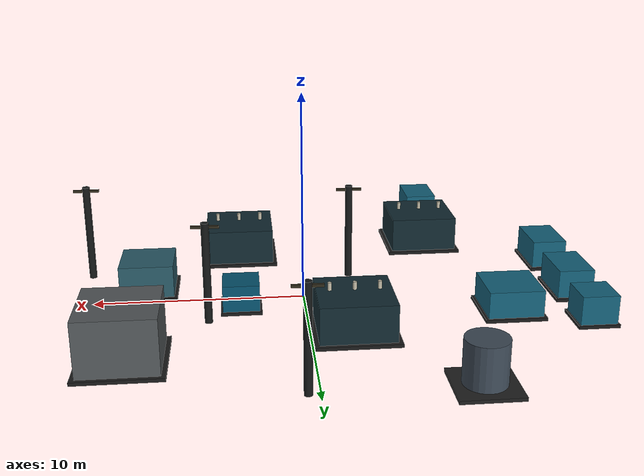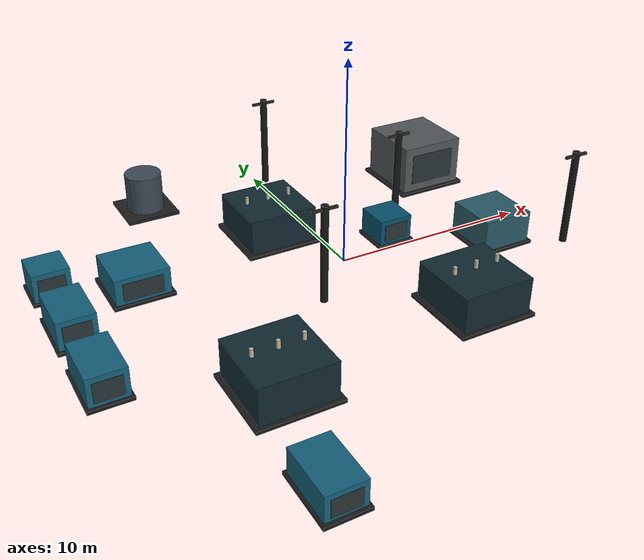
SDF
<sdf version="1.9">
 <world name="substation_complex">
  <model name="entry_switchgear">
   <static>true</static>
   <pose>-8 -12.5 0 0 0 0</pose>
   <link name="link">
    <collision name="collision">
     <pose>0 0 0.7 0 0 0</pose>
     <geometry><box><size>1.84 2.76 1.4</size></box></geometry>
    </collision>
    <visual name="base">
     <pose>0 0 0.08 0 0 0</pose>
     <geometry><box><size>1.92 2.88 0.16</size></box></geometry>
     <material>
      <ambient>0.10 0.10 0.10 1</ambient>
      <diffuse>0.10 0.10 0.10 1</diffuse>
      <specular>0.08 0.08 0.08 1</specular>
     </material>
     <plugin filename="gz-sim-label-system" name="gz::sim::systems::Label"><label>127</label></plugin>
    </visual>
    <visual name="body">
     <pose>0 0 0.7 0 0 0</pose>
     <geometry><box><size>1.72 2.58 1.26</size></box></geometry>
     <material>
      <ambient>0.08 0.38 0.48 1</ambient>
      <diffuse>0.08 0.38 0.48 1</diffuse>
      <specular>0.08 0.08 0.08 1</specular>
     </material>
     <plugin filename="gz-sim-label-system" name="gz::sim::systems::Label"><label>127</label></plugin>
    </visual>
    <visual name="front_panel">
     <pose>0 -1.305 0.7 0 0 0</pose>
     <geometry><box><size>1.24 0.025 0.812</size></box></geometry>
     <material>
      <ambient>0.16 0.20 0.21 1</ambient>
      <diffuse>0.16 0.20 0.21 1</diffuse>
      <specular>0.08 0.08 0.08 1</specular>
     </material>
     <plugin filename="gz-sim-label-system" name="gz::sim::systems::Label"><label>127</label></plugin>
    </visual>
   </link>
  </model>
  <model name="west_switchgear_02">
   <static>true</static>
   <pose>-13 -3.5 0 0 0 0</pose>
   <link name="link">
    <collision name="collision">
     <pose>0 0 0.8 0 0 0</pose>
     <geometry><box><size>1.84 2.76 1.6</size></box></geometry>
    </collision>
    <visual name="base">
     <pose>0 0 0.08 0 0 0</pose>
     <geometry><box><size>1.92 2.88 0.16</size></box></geometry>
     <material>
      <ambient>0.10 0.10 0.10 1</ambient>
      <diffuse>0.10 0.10 0.10 1</diffuse>
      <specular>0.08 0.08 0.08 1</specular>
     </material>
     <plugin filename="gz-sim-label-system" name="gz::sim::systems::Label"><label>128</label></plugin>
    </visual>
    <visual name="body">
     <pose>0 0 0.8 0 0 0</pose>
     <geometry><box><size>1.72 2.58 1.44</size></box></geometry>
     <material>
      <ambient>0.08 0.38 0.48 1</ambient>
      <diffuse>0.08 0.38 0.48 1</diffuse>
      <specular>0.08 0.08 0.08 1</specular>
     </material>
     <plugin filename="gz-sim-label-system" name="gz::sim::systems::Label"><label>128</label></plugin>
    </visual>
    <visual name="front_panel">
     <pose>0 -1.305 0.8 0 0 0</pose>
     <geometry><box><size>1.24 0.025 0.928</size></box></geometry>
     <material>
      <ambient>0.16 0.20 0.21 1</ambient>
      <diffuse>0.16 0.20 0.21 1</diffuse>
      <specular>0.08 0.08 0.08 1</specular>
     </material>
     <plugin filename="gz-sim-label-system" name="gz::sim::systems::Label"><label>128</label></plugin>
    </visual>
   </link>
  </model>
  <model name="west_switchgear_03">
   <static>true</static>
   <pose>-13 0.5 0 0 0 0</pose>
   <link name="link">
    <collision name="collision">
     <pose>0 0 0.8 0 0 0</pose>
     <geometry><box><size>1.84 2.76 1.6</size></box></geometry>
    </collision>
    <visual name="base">
     <pose>0 0 0.08 0 0 0</pose>
     <geometry><box><size>1.92 2.88 0.16</size></box></geometry>
     <material>
      <ambient>0.10 0.10 0.10 1</ambient>
      <diffuse>0.10 0.10 0.10 1</diffuse>
      <specular>0.08 0.08 0.08 1</specular>
     </material>
     <plugin filename="gz-sim-label-system" name="gz::sim::systems::Label"><label>139</label></plugin>
    </visual>
    <visual name="body">
     <pose>0 0 0.8 0 0 0</pose>
     <geometry><box><size>1.72 2.58 1.44</size></box></geometry>
     <material>
      <ambient>0.08 0.38 0.48 1</ambient>
      <diffuse>0.08 0.38 0.48 1</diffuse>
      <specular>0.08 0.08 0.08 1</specular>
     </material>
     <plugin filename="gz-sim-label-system" name="gz::sim::systems::Label"><label>139</label></plugin>
    </visual>
    <visual name="front_panel">
     <pose>0 -1.305 0.8 0 0 0</pose>
     <geometry><box><size>1.24 0.025 0.928</size></box></geometry>
     <material>
      <ambient>0.16 0.20 0.21 1</ambient>
      <diffuse>0.16 0.20 0.21 1</diffuse>
      <specular>0.08 0.08 0.08 1</specular>
     </material>
     <plugin filename="gz-sim-label-system" name="gz::sim::systems::Label"><label>139</label></plugin>
    </visual>
   </link>
  </model>
  <model name="west_switchgear_04">
   <static>true</static>
   <pose>-13 4 0 0 0 0</pose>
   <link name="link">
    <collision name="collision">
     <pose>0 0 0.8 0 0 0</pose>
     <geometry><box><size>1.84 1.84 1.6</size></box></geometry>
    </collision>
    <visual name="base">
     <pose>0 0 0.08 0 0 0</pose>
     <geometry><box><size>1.92 1.92 0.16</size></box></geometry>
     <material>
      <ambient>0.10 0.10 0.10 1</ambient>
      <diffuse>0.10 0.10 0.10 1</diffuse>
      <specular>0.08 0.08 0.08 1</specular>
     </material>
     <plugin filename="gz-sim-label-system" name="gz::sim::systems::Label"><label>149</label></plugin>
    </visual>
    <visual name="body">
     <pose>0 0 0.8 0 0 0</pose>
     <geometry><box><size>1.72 1.72 1.44</size></box></geometry>
     <material>
      <ambient>0.08 0.38 0.48 1</ambient>
      <diffuse>0.08 0.38 0.48 1</diffuse>
      <specular>0.08 0.08 0.08 1</specular>
     </material>
     <plugin filename="gz-sim-label-system" name="gz::sim::systems::Label"><label>149</label></plugin>
    </visual>
    <visual name="front_panel">
     <pose>0 -0.87 0.8 0 0 0</pose>
     <geometry><box><size>1.24 0.025 0.928</size></box></geometry>
     <material>
      <ambient>0.16 0.20 0.21 1</ambient>
      <diffuse>0.16 0.20 0.21 1</diffuse>
      <specular>0.08 0.08 0.08 1</specular>
     </material>
     <plugin filename="gz-sim-label-system" name="gz::sim::systems::Label"><label>149</label></plugin>
    </visual>
   </link>
  </model>
  <model name="transformer_sw">
   <static>true</static>
   <pose>-7 -7 0 0 0 0</pose>
   <link name="link">
    <collision name="collision">
     <pose>0 0 1 0 0 0</pose>
     <geometry><box><size>3.68 3.68 2</size></box></geometry>
    </collision>
    <visual name="base">
     <pose>0 0 0.08 0 0 0</pose>
     <geometry><box><size>3.84 3.84 0.16</size></box></geometry>
     <material>
      <ambient>0.10 0.10 0.10 1</ambient>
      <diffuse>0.10 0.10 0.10 1</diffuse>
      <specular>0.08 0.08 0.08 1</specular>
     </material>
     <plugin filename="gz-sim-label-system" name="gz::sim::systems::Label"><label>76</label></plugin>
    </visual>
    <visual name="body">
     <pose>0 0 1 0 0 0</pose>
     <geometry><box><size>3.44 3.44 1.8</size></box></geometry>
     <material>
      <ambient>0.07 0.16 0.19 1</ambient>
      <diffuse>0.07 0.16 0.19 1</diffuse>
      <specular>0.08 0.08 0.08 1</specular>
     </material>
     <plugin filename="gz-sim-label-system" name="gz::sim::systems::Label"><label>76</label></plugin>
    </visual>
    <visual name="bushing_1">
     <pose>-1.12 0 2.18 0 0 0</pose>
     <geometry><cylinder><radius>0.09</radius><length>0.36</length></cylinder></geometry>
     <material>
      <ambient>0.75 0.72 0.64 1</ambient>
      <diffuse>0.75 0.72 0.64 1</diffuse>
      <specular>0.08 0.08 0.08 1</specular>
     </material>
     <plugin filename="gz-sim-label-system" name="gz::sim::systems::Label"><label>76</label></plugin>
    </visual>
    <visual name="bushing_2">
     <pose>0 0 2.18 0 0 0</pose>
     <geometry><cylinder><radius>0.09</radius><length>0.36</length></cylinder></geometry>
     <material>
      <ambient>0.75 0.72 0.64 1</ambient>
      <diffuse>0.75 0.72 0.64 1</diffuse>
      <specular>0.08 0.08 0.08 1</specular>
     </material>
     <plugin filename="gz-sim-label-system" name="gz::sim::systems::Label"><label>76</label></plugin>
    </visual>
    <visual name="bushing_3">
     <pose>1.12 0 2.18 0 0 0</pose>
     <geometry><cylinder><radius>0.09</radius><length>0.36</length></cylinder></geometry>
     <material>
      <ambient>0.75 0.72 0.64 1</ambient>
      <diffuse>0.75 0.72 0.64 1</diffuse>
      <specular>0.08 0.08 0.08 1</specular>
     </material>
     <plugin filename="gz-sim-label-system" name="gz::sim::systems::Label"><label>76</label></plugin>
    </visual>
   </link>
  </model>
  <model name="transformer_se">
   <static>true</static>
   <pose>3 -6 0 0 0 0</pose>
   <link name="link">
    <collision name="collision">
     <pose>0 0 1 0 0 0</pose>
     <geometry><box><size>3.68 3.68 2</size></box></geometry>
    </collision>
    <visual name="base">
     <pose>0 0 0.08 0 0 0</pose>
     <geometry><box><size>3.84 3.84 0.16</size></box></geometry>
     <material>
      <ambient>0.10 0.10 0.10 1</ambient>
      <diffuse>0.10 0.10 0.10 1</diffuse>
      <specular>0.08 0.08 0.08 1</specular>
     </material>
     <plugin filename="gz-sim-label-system" name="gz::sim::systems::Label"><label>57</label></plugin>
    </visual>
    <visual name="body">
     <pose>0 0 1 0 0 0</pose>
     <geometry><box><size>3.44 3.44 1.8</size></box></geometry>
     <material>
      <ambient>0.07 0.16 0.19 1</ambient>
      <diffuse>0.07 0.16 0.19 1</diffuse>
      <specular>0.08 0.08 0.08 1</specular>
     </material>
     <plugin filename="gz-sim-label-system" name="gz::sim::systems::Label"><label>57</label></plugin>
    </visual>
    <visual name="bushing_1">
     <pose>-1.12 0 2.18 0 0 0</pose>
     <geometry><cylinder><radius>0.09</radius><length>0.36</length></cylinder></geometry>
     <material>
      <ambient>0.75 0.72 0.64 1</ambient>
      <diffuse>0.75 0.72 0.64 1</diffuse>
      <specular>0.08 0.08 0.08 1</specular>
     </material>
     <plugin filename="gz-sim-label-system" name="gz::sim::systems::Label"><label>57</label></plugin>
    </visual>
    <visual name="bushing_2">
     <pose>0 0 2.18 0 0 0</pose>
     <geometry><cylinder><radius>0.09</radius><length>0.36</length></cylinder></geometry>
     <material>
      <ambient>0.75 0.72 0.64 1</ambient>
      <diffuse>0.75 0.72 0.64 1</diffuse>
      <specular>0.08 0.08 0.08 1</specular>
     </material>
     <plugin filename="gz-sim-label-system" name="gz::sim::systems::Label"><label>57</label></plugin>
    </visual>
    <visual name="bushing_3">
     <pose>1.12 0 2.18 0 0 0</pose>
     <geometry><cylinder><radius>0.09</radius><length>0.36</length></cylinder></geometry>
     <material>
      <ambient>0.75 0.72 0.64 1</ambient>
      <diffuse>0.75 0.72 0.64 1</diffuse>
      <specular>0.08 0.08 0.08 1</specular>
     </material>
     <plugin filename="gz-sim-label-system" name="gz::sim::systems::Label"><label>57</label></plugin>
    </visual>
   </link>
  </model>
  <model name="transformer_mid">
   <static>true</static>
   <pose>-2 4 0 0 0 0</pose>
   <link name="link">
    <collision name="collision">
     <pose>0 0 1 0 0 0</pose>
     <geometry><box><size>3.68 3.68 2</size></box></geometry>
    </collision>
    <visual name="base">
     <pose>0 0 0.08 0 0 0</pose>
     <geometry><box><size>3.84 3.84 0.16</size></box></geometry>
     <material>
      <ambient>0.10 0.10 0.10 1</ambient>
      <diffuse>0.10 0.10 0.10 1</diffuse>
      <specular>0.08 0.08 0.08 1</specular>
     </material>
     <plugin filename="gz-sim-label-system" name="gz::sim::systems::Label"><label>64</label></plugin>
    </visual>
    <visual name="body">
     <pose>0 0 1 0 0 0</pose>
     <geometry><box><size>3.44 3.44 1.8</size></box></geometry>
     <material>
      <ambient>0.07 0.16 0.19 1</ambient>
      <diffuse>0.07 0.16 0.19 1</diffuse>
      <specular>0.08 0.08 0.08 1</specular>
     </material>
     <plugin filename="gz-sim-label-system" name="gz::sim::systems::Label"><label>64</label></plugin>
    </visual>
    <visual name="bushing_1">
     <pose>-1.12 0 2.18 0 0 0</pose>
     <geometry><cylinder><radius>0.09</radius><length>0.36</length></cylinder></geometry>
     <material>
      <ambient>0.75 0.72 0.64 1</ambient>
      <diffuse>0.75 0.72 0.64 1</diffuse>
      <specular>0.08 0.08 0.08 1</specular>
     </material>
     <plugin filename="gz-sim-label-system" name="gz::sim::systems::Label"><label>64</label></plugin>
    </visual>
    <visual name="bushing_2">
     <pose>0 0 2.18 0 0 0</pose>
     <geometry><cylinder><radius>0.09</radius><length>0.36</length></cylinder></geometry>
     <material>
      <ambient>0.75 0.72 0.64 1</ambient>
      <diffuse>0.75 0.72 0.64 1</diffuse>
      <specular>0.08 0.08 0.08 1</specular>
     </material>
     <plugin filename="gz-sim-label-system" name="gz::sim::systems::Label"><label>64</label></plugin>
    </visual>
    <visual name="bushing_3">
     <pose>1.12 0 2.18 0 0 0</pose>
     <geometry><cylinder><radius>0.09</radius><length>0.36</length></cylinder></geometry>
     <material>
      <ambient>0.75 0.72 0.64 1</ambient>
      <diffuse>0.75 0.72 0.64 1</diffuse>
      <specular>0.08 0.08 0.08 1</specular>
     </material>
     <plugin filename="gz-sim-label-system" name="gz::sim::systems::Label"><label>64</label></plugin>
    </visual>
   </link>
  </model>
  <model name="control_building">
   <static>true</static>
   <pose>8 6 0 0 0 0</pose>
   <link name="link">
    <collision name="collision">
     <pose>0 0 1.4 0 0 0</pose>
     <geometry><box><size>3.68 3.68 2.8</size></box></geometry>
    </collision>
    <visual name="base">
     <pose>0 0 0.08 0 0 0</pose>
     <geometry><box><size>3.84 3.84 0.16</size></box></geometry>
     <material>
      <ambient>0.10 0.10 0.10 1</ambient>
      <diffuse>0.10 0.10 0.10 1</diffuse>
      <specular>0.08 0.08 0.08 1</specular>
     </material>
    </visual>
    <visual name="body">
     <pose>0 0 1.4 0 0 0</pose>
     <geometry><box><size>3.44 3.44 2.52</size></box></geometry>
     <material>
      <ambient>0.32 0.34 0.35 1</ambient>
      <diffuse>0.32 0.34 0.35 1</diffuse>
      <specular>0.08 0.08 0.08 1</specular>
     </material>
    </visual>
    <visual name="front_panel">
     <pose>0 -1.74 1.4 0 0 0</pose>
     <geometry><box><size>2.48 0.025 1.624</size></box></geometry>
     <material>
      <ambient>0.16 0.20 0.21 1</ambient>
      <diffuse>0.16 0.20 0.21 1</diffuse>
      <specular>0.08 0.08 0.08 1</specular>
     </material>
    </visual>
   </link>
  </model>
  <model name="switchgear_west">
   <static>true</static>
   <pose>-9.5 2.5 0 0 0 0</pose>
   <link name="link">
    <collision name="collision">
     <pose>0 0 0.75 0 0 0</pose>
     <geometry><box><size>2.76 2.76 1.5</size></box></geometry>
    </collision>
    <visual name="base">
     <pose>0 0 0.08 0 0 0</pose>
     <geometry><box><size>2.88 2.88 0.16</size></box></geometry>
     <material>
      <ambient>0.10 0.10 0.10 1</ambient>
      <diffuse>0.10 0.10 0.10 1</diffuse>
      <specular>0.08 0.08 0.08 1</specular>
     </material>
     <plugin filename="gz-sim-label-system" name="gz::sim::systems::Label"><label>113</label></plugin>
    </visual>
    <visual name="body">
     <pose>0 0 0.75 0 0 0</pose>
     <geometry><box><size>2.58 2.58 1.35</size></box></geometry>
     <material>
      <ambient>0.08 0.38 0.48 1</ambient>
      <diffuse>0.08 0.38 0.48 1</diffuse>
      <specular>0.08 0.08 0.08 1</specular>
     </material>
     <plugin filename="gz-sim-label-system" name="gz::sim::systems::Label"><label>113</label></plugin>
    </visual>
    <visual name="front_panel">
     <pose>0 -1.305 0.75 0 0 0</pose>
     <geometry><box><size>1.86 0.025 0.87</size></box></geometry>
     <material>
      <ambient>0.16 0.20 0.21 1</ambient>
      <diffuse>0.16 0.20 0.21 1</diffuse>
      <specular>0.08 0.08 0.08 1</specular>
     </material>
     <plugin filename="gz-sim-label-system" name="gz::sim::systems::Label"><label>113</label></plugin>
    </visual>
   </link>
  </model>
  <model name="capacitor_east">
   <static>true</static>
   <pose>7.5 -1.5 0 0 0 0</pose>
   <link name="link">
    <collision name="collision">
     <pose>0 0 0.9 0 0 0</pose>
     <geometry><box><size>2.76 2.76 1.8</size></box></geometry>
    </collision>
    <visual name="base">
     <pose>0 0 0.08 0 0 0</pose>
     <geometry><box><size>2.88 2.88 0.16</size></box></geometry>
     <material>
      <ambient>0.10 0.10 0.10 1</ambient>
      <diffuse>0.10 0.10 0.10 1</diffuse>
      <specular>0.08 0.08 0.08 1</specular>
     </material>
     <plugin filename="gz-sim-label-system" name="gz::sim::systems::Label"><label>178</label></plugin>
    </visual>
    <visual name="body">
     <pose>0 0 0.9 0 0 0</pose>
     <geometry><box><size>2.58 2.58 1.62</size></box></geometry>
     <material>
      <ambient>0.16 0.35 0.40 1</ambient>
      <diffuse>0.16 0.35 0.40 1</diffuse>
      <specular>0.08 0.08 0.08 1</specular>
     </material>
     <plugin filename="gz-sim-label-system" name="gz::sim::systems::Label"><label>178</label></plugin>
    </visual>
    <visual name="capacitor_-0.22_-0.25">
     <pose>-0.75 -0.66 0.98 0 0 0</pose>
     <geometry><cylinder><radius>0.1</radius><length>1.17</length></cylinder></geometry>
     <material>
      <ambient>0.72 0.74 0.70 1</ambient>
      <diffuse>0.72 0.74 0.70 1</diffuse>
      <specular>0.08 0.08 0.08 1</specular>
     </material>
     <plugin filename="gz-sim-label-system" name="gz::sim::systems::Label"><label>178</label></plugin>
    </visual>
    <visual name="capacitor_-0.22_0.0">
     <pose>0 -0.66 0.98 0 0 0</pose>
     <geometry><cylinder><radius>0.1</radius><length>1.17</length></cylinder></geometry>
     <material>
      <ambient>0.72 0.74 0.70 1</ambient>
      <diffuse>0.72 0.74 0.70 1</diffuse>
      <specular>0.08 0.08 0.08 1</specular>
     </material>
     <plugin filename="gz-sim-label-system" name="gz::sim::systems::Label"><label>178</label></plugin>
    </visual>
    <visual name="capacitor_-0.22_0.25">
     <pose>0.75 -0.66 0.98 0 0 0</pose>
     <geometry><cylinder><radius>0.1</radius><length>1.17</length></cylinder></geometry>
     <material>
      <ambient>0.72 0.74 0.70 1</ambient>
      <diffuse>0.72 0.74 0.70 1</diffuse>
      <specular>0.08 0.08 0.08 1</specular>
     </material>
     <plugin filename="gz-sim-label-system" name="gz::sim::systems::Label"><label>178</label></plugin>
    </visual>
    <visual name="capacitor_0.22_-0.25">
     <pose>-0.75 0.66 0.98 0 0 0</pose>
     <geometry><cylinder><radius>0.1</radius><length>1.17</length></cylinder></geometry>
     <material>
      <ambient>0.72 0.74 0.70 1</ambient>
      <diffuse>0.72 0.74 0.70 1</diffuse>
      <specular>0.08 0.08 0.08 1</specular>
     </material>
     <plugin filename="gz-sim-label-system" name="gz::sim::systems::Label"><label>178</label></plugin>
    </visual>
    <visual name="capacitor_0.22_0.0">
     <pose>0 0.66 0.98 0 0 0</pose>
     <geometry><cylinder><radius>0.1</radius><length>1.17</length></cylinder></geometry>
     <material>
      <ambient>0.72 0.74 0.70 1</ambient>
      <diffuse>0.72 0.74 0.70 1</diffuse>
      <specular>0.08 0.08 0.08 1</specular>
     </material>
     <plugin filename="gz-sim-label-system" name="gz::sim::systems::Label"><label>178</label></plugin>
    </visual>
    <visual name="capacitor_0.22_0.25">
     <pose>0.75 0.66 0.98 0 0 0</pose>
     <geometry><cylinder><radius>0.1</radius><length>1.17</length></cylinder></geometry>
     <material>
      <ambient>0.72 0.74 0.70 1</ambient>
      <diffuse>0.72 0.74 0.70 1</diffuse>
      <specular>0.08 0.08 0.08 1</specular>
     </material>
     <plugin filename="gz-sim-label-system" name="gz::sim::systems::Label"><label>178</label></plugin>
    </visual>
   </link>
  </model>
  <model name="reactor_north">
   <static>true</static>
   <pose>-6.5 9.5 0 0 0 0</pose>
   <link name="link">
    <collision name="collision">
     <pose>0 0 1.1 0 0 0</pose>
     <geometry><cylinder><radius>1.02</radius><length>2.2</length></cylinder></geometry>
    </collision>
    <visual name="reactor">
     <pose>0 0 1.1 0 0 0</pose>
     <geometry><cylinder><radius>0.9384</radius><length>2.024</length></cylinder></geometry>
     <material>
      <ambient>0.24 0.29 0.34 1</ambient>
      <diffuse>0.24 0.29 0.34 1</diffuse>
      <specular>0.08 0.08 0.08 1</specular>
     </material>
     <plugin filename="gz-sim-label-system" name="gz::sim::systems::Label"><label>208</label></plugin>
    </visual>
    <visual name="base">
     <pose>0 0 0.08 0 0 0</pose>
     <geometry><box><size>2.7 2.7 0.16</size></box></geometry>
     <material>
      <ambient>0.12 0.12 0.12 1</ambient>
      <diffuse>0.12 0.12 0.12 1</diffuse>
      <specular>0.08 0.08 0.08 1</specular>
     </material>
     <plugin filename="gz-sim-label-system" name="gz::sim::systems::Label"><label>208</label></plugin>
    </visual>
   </link>
  </model>
  <model name="cabinet_center">
   <static>true</static>
   <pose>3 1 0 0 0 0</pose>
   <link name="link">
    <collision name="collision">
     <pose>0 0 0.75 0 0 0</pose>
     <geometry><box><size>1.84 1.84 1.5</size></box></geometry>
    </collision>
    <visual name="base">
     <pose>0 0 0.08 0 0 0</pose>
     <geometry><box><size>1.92 1.92 0.16</size></box></geometry>
     <material>
      <ambient>0.10 0.10 0.10 1</ambient>
      <diffuse>0.10 0.10 0.10 1</diffuse>
      <specular>0.08 0.08 0.08 1</specular>
     </material>
    </visual>
    <visual name="body">
     <pose>0 0 0.75 0 0 0</pose>
     <geometry><box><size>1.72 1.72 1.35</size></box></geometry>
     <material>
      <ambient>0.02 0.32 0.43 1</ambient>
      <diffuse>0.02 0.32 0.43 1</diffuse>
      <specular>0.08 0.08 0.08 1</specular>
     </material>
    </visual>
    <visual name="front_panel">
     <pose>0 -0.87 0.75 0 0 0</pose>
     <geometry><box><size>1.24 0.025 0.87</size></box></geometry>
     <material>
      <ambient>0.16 0.20 0.21 1</ambient>
      <diffuse>0.16 0.20 0.21 1</diffuse>
      <specular>0.08 0.08 0.08 1</specular>
     </material>
    </visual>
   </link>
  </model>
  <model name="pole_a">
   <static>true</static>
   <pose>-2.5 -2.5 0 0 0 0</pose>
   <link name="link">
    <collision name="collision">
     <pose>0 0 2.4 0 0 0</pose>
     <geometry><cylinder><radius>0.22</radius><length>4.8</length></cylinder></geometry>
    </collision>
    <visual name="pole">
     <pose>0 0 2.4 0 0 0</pose>
     <geometry><cylinder><radius>0.18</radius><length>4.8</length></cylinder></geometry>
     <material>
      <ambient>0.08 0.09 0.09 1</ambient>
      <diffuse>0.08 0.09 0.09 1</diffuse>
      <specular>0.08 0.08 0.08 1</specular>
     </material>
    </visual>
    <visual name="crossarm">
     <pose>0 0 4.6 0 0 0</pose>
     <geometry><box><size>1.25 0.12 0.12</size></box></geometry>
     <material>
      <ambient>0.18 0.16 0.10 1</ambient>
      <diffuse>0.18 0.16 0.10 1</diffuse>
      <specular>0.08 0.08 0.08 1</specular>
     </material>
    </visual>
   </link>
  </model>
  <model name="pole_b">
   <static>true</static>
   <pose>4.5 2.5 0 0 0 0</pose>
   <link name="link">
    <collision name="collision">
     <pose>0 0 2.4 0 0 0</pose>
     <geometry><cylinder><radius>0.22</radius><length>4.8</length></cylinder></geometry>
    </collision>
    <visual name="pole">
     <pose>0 0 2.4 0 0 0</pose>
     <geometry><cylinder><radius>0.18</radius><length>4.8</length></cylinder></geometry>
     <material>
      <ambient>0.08 0.09 0.09 1</ambient>
      <diffuse>0.08 0.09 0.09 1</diffuse>
      <specular>0.08 0.08 0.08 1</specular>
     </material>
    </visual>
    <visual name="crossarm">
     <pose>0 0 4.6 0 0 0</pose>
     <geometry><box><size>1.25 0.12 0.12</size></box></geometry>
     <material>
      <ambient>0.18 0.16 0.10 1</ambient>
      <diffuse>0.18 0.16 0.10 1</diffuse>
      <specular>0.08 0.08 0.08 1</specular>
     </material>
    </visual>
   </link>
  </model>
  <model name="pole_c">
   <static>true</static>
   <pose>10.5 -3.5 0 0 0 0</pose>
   <link name="link">
    <collision name="collision">
     <pose>0 0 2.4 0 0 0</pose>
     <geometry><cylinder><radius>0.22</radius><length>4.8</length></cylinder></geometry>
    </collision>
    <visual name="pole">
     <pose>0 0 2.4 0 0 0</pose>
     <geometry><cylinder><radius>0.18</radius><length>4.8</length></cylinder></geometry>
     <material>
      <ambient>0.08 0.09 0.09 1</ambient>
      <diffuse>0.08 0.09 0.09 1</diffuse>
      <specular>0.08 0.08 0.08 1</specular>
     </material>
    </visual>
    <visual name="crossarm">
     <pose>0 0 4.6 0 0 0</pose>
     <geometry><box><size>1.25 0.12 0.12</size></box></geometry>
     <material>
      <ambient>0.18 0.16 0.10 1</ambient>
      <diffuse>0.18 0.16 0.10 1</diffuse>
      <specular>0.08 0.08 0.08 1</specular>
     </material>
    </visual>
   </link>
  </model>
  <model name="pole_d">
   <static>true</static>
   <pose>0.5 9.5 0 0 0 0</pose>
   <link name="link">
    <collision name="collision">
     <pose>0 0 2.4 0 0 0</pose>
     <geometry><cylinder><radius>0.22</radius><length>4.8</length></cylinder></geometry>
    </collision>
    <visual name="pole">
     <pose>0 0 2.4 0 0 0</pose>
     <geometry><cylinder><radius>0.18</radius><length>4.8</length></cylinder></geometry>
     <material>
      <ambient>0.08 0.09 0.09 1</ambient>
      <diffuse>0.08 0.09 0.09 1</diffuse>
      <specular>0.08 0.08 0.08 1</specular>
     </material>
    </visual>
    <visual name="crossarm">
     <pose>0 0 4.6 0 0 0</pose>
     <geometry><box><size>1.25 0.12 0.12</size></box></geometry>
     <material>
      <ambient>0.18 0.16 0.10 1</ambient>
      <diffuse>0.18 0.16 0.10 1</diffuse>
      <specular>0.08 0.08 0.08 1</specular>
     </material>
    </visual>
   </link>
  </model>
 </world>
</sdf>
